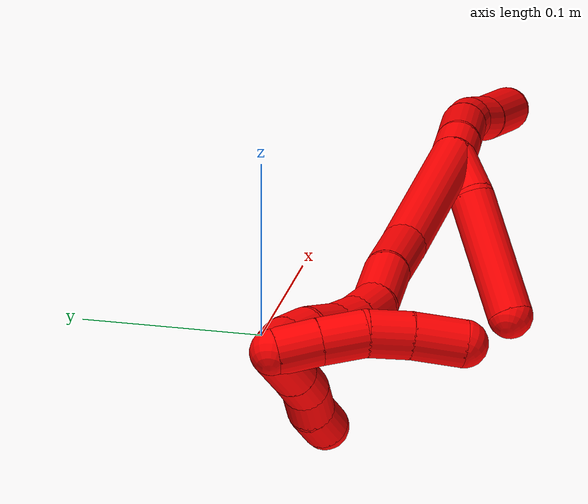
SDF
<sdf version="1.7">
 <world name="default">
  <model name="2">
   <static>0</static>
   <link name="2">
    <collision name="collision-cylinder-e_1_2_8">
     <pose>0.004263 0.001034 0.009183 -0.11218 0.432259 -0.024655</pose>
     <geometry><cylinder><radius>0.0125</radius><length>0.020354</length></cylinder></geometry>
     <surface>
      <friction><ode><mu>1.16</mu><mu2>1.16</mu2><slip1>0</slip1><slip2>0</slip2></ode></friction>
      <contact><ode><kp>1e+06</kp><kd>1</kd><max_vel>0</max_vel><min_depth>0.001</min_depth></ode></contact>
     </surface>
    </collision>
    <visual name="visual-cylinder-e_1_2_8">
     <pose>0.004263 0.001034 0.009183 -0.11218 0.432259 -0.024655</pose>
     <geometry><cylinder><radius>0.0125</radius><length>0.020354</length></cylinder></geometry>
     <material><ambient>1 0 0 1</ambient></material>
    </visual>
    <collision name="collision-cylinder-e_2_8_9">
     <pose>0.020799 0.006479 0.03587 -0.24682 0.597063 -0.076304</pose>
     <geometry><cylinder><radius>0.0125</radius><length>0.043655</length></cylinder></geometry>
     <surface>
      <friction><ode><mu>1.16</mu><mu2>1.16</mu2><slip1>0</slip1><slip2>0</slip2></ode></friction>
      <contact><ode><kp>1e+06</kp><kd>1</kd><max_vel>0</max_vel><min_depth>0.001</min_depth></ode></contact>
     </surface>
    </collision>
    <visual name="visual-cylinder-e_2_8_9">
     <pose>0.020799 0.006479 0.03587 -0.24682 0.597063 -0.076304</pose>
     <geometry><cylinder><radius>0.0125</radius><length>0.043655</length></cylinder></geometry>
     <material><ambient>1 0 0 1</ambient></material>
    </visual>
    <collision name="collision-cylinder-e_3_9_10">
     <pose>0.040222 0.012475 0.061663 -0.189056 0.702999 -0.069512</pose>
     <geometry><cylinder><radius>0.0125</radius><length>0.022123</length></cylinder></geometry>
     <surface>
      <friction><ode><mu>1.16</mu><mu2>1.16</mu2><slip1>0</slip1><slip2>0</slip2></ode></friction>
      <contact><ode><kp>1e+06</kp><kd>1</kd><max_vel>0</max_vel><min_depth>0.001</min_depth></ode></contact>
     </surface>
    </collision>
    <visual name="visual-cylinder-e_3_9_10">
     <pose>0.040222 0.012475 0.061663 -0.189056 0.702999 -0.069512</pose>
     <geometry><cylinder><radius>0.0125</radius><length>0.022123</length></cylinder></geometry>
     <material><ambient>1 0 0 1</ambient></material>
    </visual>
    <collision name="collision-cylinder-e_4_10_11">
     <pose>0.055381 0.01289 0.077123 0.1619 0.833898 0.071835</pose>
     <geometry><cylinder><radius>0.0125</radius><length>0.021626</length></cylinder></geometry>
     <surface>
      <friction><ode><mu>1.16</mu><mu2>1.16</mu2><slip1>0</slip1><slip2>0</slip2></ode></friction>
      <contact><ode><kp>1e+06</kp><kd>1</kd><max_vel>0</max_vel><min_depth>0.001</min_depth></ode></contact>
     </surface>
    </collision>
    <visual name="visual-cylinder-e_4_10_11">
     <pose>0.055381 0.01289 0.077123 0.1619 0.833898 0.071835</pose>
     <geometry><cylinder><radius>0.0125</radius><length>0.021626</length></cylinder></geometry>
     <material><ambient>1 0 0 1</ambient></material>
    </visual>
    <collision name="collision-cylinder-e_5_11_6">
     <pose>0.077537 0.011069 0.099962 0.041432 0.734071 0.015931</pose>
     <geometry><cylinder><radius>0.0125</radius><length>0.042242</length></cylinder></geometry>
     <surface>
      <friction><ode><mu>1.16</mu><mu2>1.16</mu2><slip1>0</slip1><slip2>0</slip2></ode></friction>
      <contact><ode><kp>1e+06</kp><kd>1</kd><max_vel>0</max_vel><min_depth>0.001</min_depth></ode></contact>
     </surface>
    </collision>
    <visual name="visual-cylinder-e_5_11_6">
     <pose>0.077537 0.011069 0.099962 0.041432 0.734071 0.015931</pose>
     <geometry><cylinder><radius>0.0125</radius><length>0.042242</length></cylinder></geometry>
     <material><ambient>1 0 0 1</ambient></material>
    </visual>
    <collision name="collision-cylinder-e_1_2_12">
     <pose>0.002988 -0.006355 -0.012648 2.676 0.208028 0.829497</pose>
     <geometry><cylinder><radius>0.0125</radius><length>0.028934</length></cylinder></geometry>
     <surface>
      <friction><ode><mu>1.16</mu><mu2>1.16</mu2><slip1>0</slip1><slip2>0</slip2></ode></friction>
      <contact><ode><kp>1e+06</kp><kd>1</kd><max_vel>0</max_vel><min_depth>0.001</min_depth></ode></contact>
     </surface>
    </collision>
    <visual name="visual-cylinder-e_1_2_12">
     <pose>0.002988 -0.006355 -0.012648 2.676 0.208028 0.829497</pose>
     <geometry><cylinder><radius>0.0125</radius><length>0.028934</length></cylinder></geometry>
     <material><ambient>1 0 0 1</ambient></material>
    </visual>
    <collision name="collision-cylinder-e_2_12_5">
     <pose>0.020989 -0.023566 -0.055617 2.79778 0.436231 1.8126</pose>
     <geometry><cylinder><radius>0.0125</radius><length>0.071066</length></cylinder></geometry>
     <surface>
      <friction><ode><mu>1.16</mu><mu2>1.16</mu2><slip1>0</slip1><slip2>0</slip2></ode></friction>
      <contact><ode><kp>1e+06</kp><kd>1</kd><max_vel>0</max_vel><min_depth>0.001</min_depth></ode></contact>
     </surface>
    </collision>
    <visual name="visual-cylinder-e_2_12_5">
     <pose>0.020989 -0.023566 -0.055617 2.79778 0.436231 1.8126</pose>
     <geometry><cylinder><radius>0.0125</radius><length>0.071066</length></cylinder></geometry>
     <material><ambient>1 0 0 1</ambient></material>
    </visual>
    <collision name="collision-cylinder-e_1_2_13">
     <pose>-0.021381 0.000858 -0.049456 -3.12424 -0.408 3.05775</pose>
     <geometry><cylinder><radius>0.0125</radius><length>0.107772</length></cylinder></geometry>
     <surface>
      <friction><ode><mu>1.16</mu><mu2>1.16</mu2><slip1>0</slip1><slip2>0</slip2></ode></friction>
      <contact><ode><kp>1e+06</kp><kd>1</kd><max_vel>0</max_vel><min_depth>0.001</min_depth></ode></contact>
     </surface>
    </collision>
    <visual name="visual-cylinder-e_1_2_13">
     <pose>-0.021381 0.000858 -0.049456 -3.12424 -0.408 3.05775</pose>
     <geometry><cylinder><radius>0.0125</radius><length>0.107772</length></cylinder></geometry>
     <material><ambient>1 0 0 1</ambient></material>
    </visual>
    <collision name="collision-cylinder-e_2_13_14">
     <pose>-0.054754 -6.8e-05 -0.118107 3.04887 -0.556462 -2.81956</pose>
     <geometry><cylinder><radius>0.0125</radius><length>0.045409</length></cylinder></geometry>
     <surface>
      <friction><ode><mu>1.16</mu><mu2>1.16</mu2><slip1>0</slip1><slip2>0</slip2></ode></friction>
      <contact><ode><kp>1e+06</kp><kd>1</kd><max_vel>0</max_vel><min_depth>0.001</min_depth></ode></contact>
     </surface>
    </collision>
    <visual name="visual-cylinder-e_2_13_14">
     <pose>-0.054754 -6.8e-05 -0.118107 3.04887 -0.556462 -2.81956</pose>
     <geometry><cylinder><radius>0.0125</radius><length>0.045409</length></cylinder></geometry>
     <material><ambient>1 0 0 1</ambient></material>
    </visual>
    <collision name="collision-cylinder-e_3_14_15">
     <pose>-0.073241 -0.002955 -0.153693 3.07448 -0.376527 -2.79279</pose>
     <geometry><cylinder><radius>0.0125</radius><length>0.035328</length></cylinder></geometry>
     <surface>
      <friction><ode><mu>1.16</mu><mu2>1.16</mu2><slip1>0</slip1><slip2>0</slip2></ode></friction>
      <contact><ode><kp>1e+06</kp><kd>1</kd><max_vel>0</max_vel><min_depth>0.001</min_depth></ode></contact>
     </surface>
    </collision>
    <visual name="visual-cylinder-e_3_14_15">
     <pose>-0.073241 -0.002955 -0.153693 3.07448 -0.376527 -2.79279</pose>
     <geometry><cylinder><radius>0.0125</radius><length>0.035328</length></cylinder></geometry>
     <material><ambient>1 0 0 1</ambient></material>
    </visual>
    <collision name="collision-cylinder-e_4_15_16">
     <pose>-0.085974 -0.001947 -0.179892 -2.92972 -0.556251 2.4286</pose>
     <geometry><cylinder><radius>0.0125</radius><length>0.02363</length></cylinder></geometry>
     <surface>
      <friction><ode><mu>1.16</mu><mu2>1.16</mu2><slip1>0</slip1><slip2>0</slip2></ode></friction>
      <contact><ode><kp>1e+06</kp><kd>1</kd><max_vel>0</max_vel><min_depth>0.001</min_depth></ode></contact>
     </surface>
    </collision>
    <visual name="visual-cylinder-e_4_15_16">
     <pose>-0.085974 -0.001947 -0.179892 -2.92972 -0.556251 2.4286</pose>
     <geometry><cylinder><radius>0.0125</radius><length>0.02363</length></cylinder></geometry>
     <material><ambient>1 0 0 1</ambient></material>
    </visual>
    <collision name="collision-cylinder-e_5_16_17">
     <pose>-0.09855 0.002783 -0.197367 -2.81232 -0.663872 2.24331</pose>
     <geometry><cylinder><radius>0.0125</radius><length>0.020571</length></cylinder></geometry>
     <surface>
      <friction><ode><mu>1.16</mu><mu2>1.16</mu2><slip1>0</slip1><slip2>0</slip2></ode></friction>
      <contact><ode><kp>1e+06</kp><kd>1</kd><max_vel>0</max_vel><min_depth>0.001</min_depth></ode></contact>
     </surface>
    </collision>
    <visual name="visual-cylinder-e_5_16_17">
     <pose>-0.09855 0.002783 -0.197367 -2.81232 -0.663872 2.24331</pose>
     <geometry><cylinder><radius>0.0125</radius><length>0.020571</length></cylinder></geometry>
     <material><ambient>1 0 0 1</ambient></material>
    </visual>
    <collision name="collision-cylinder-e_6_17_18">
     <pose>-0.114537 0.008545 -0.213652 -2.79194 -0.810638 2.36057</pose>
     <geometry><cylinder><radius>0.0125</radius><length>0.026631</length></cylinder></geometry>
     <surface>
      <friction><ode><mu>1.16</mu><mu2>1.16</mu2><slip1>0</slip1><slip2>0</slip2></ode></friction>
      <contact><ode><kp>1e+06</kp><kd>1</kd><max_vel>0</max_vel><min_depth>0.001</min_depth></ode></contact>
     </surface>
    </collision>
    <visual name="visual-cylinder-e_6_17_18">
     <pose>-0.114537 0.008545 -0.213652 -2.79194 -0.810638 2.36057</pose>
     <geometry><cylinder><radius>0.0125</radius><length>0.026631</length></cylinder></geometry>
     <material><ambient>1 0 0 1</ambient></material>
    </visual>
    <collision name="collision-cylinder-e_7_18_19">
     <pose>-0.129996 0.014765 -0.22993 -2.75956 -0.613271 2.04502</pose>
     <geometry><cylinder><radius>0.0125</radius><length>0.020184</length></cylinder></geometry>
     <surface>
      <friction><ode><mu>1.16</mu><mu2>1.16</mu2><slip1>0</slip1><slip2>0</slip2></ode></friction>
      <contact><ode><kp>1e+06</kp><kd>1</kd><max_vel>0</max_vel><min_depth>0.001</min_depth></ode></contact>
     </surface>
    </collision>
    <visual name="visual-cylinder-e_7_18_19">
     <pose>-0.129996 0.014765 -0.22993 -2.75956 -0.613271 2.04502</pose>
     <geometry><cylinder><radius>0.0125</radius><length>0.020184</length></cylinder></geometry>
     <material><ambient>1 0 0 1</ambient></material>
    </visual>
    <collision name="collision-cylinder-e_8_19_1">
     <pose>-0.141454 0.017617 -0.246123 3.11522 -0.584634 -3.05401</pose>
     <geometry><cylinder><radius>0.0125</radius><length>0.020475</length></cylinder></geometry>
     <surface>
      <friction><ode><mu>1.16</mu><mu2>1.16</mu2><slip1>0</slip1><slip2>0</slip2></ode></friction>
      <contact><ode><kp>1e+06</kp><kd>1</kd><max_vel>0</max_vel><min_depth>0.001</min_depth></ode></contact>
     </surface>
    </collision>
    <visual name="visual-cylinder-e_8_19_1">
     <pose>-0.141454 0.017617 -0.246123 3.11522 -0.584634 -3.05401</pose>
     <geometry><cylinder><radius>0.0125</radius><length>0.020475</length></cylinder></geometry>
     <material><ambient>1 0 0 1</ambient></material>
    </visual>
    <collision name="collision-cylinder-e_1_1_20">
     <pose>-0.143783 0.007135 -0.24948 1.1034 0.281389 0.173892</pose>
     <geometry><cylinder><radius>0.0125</radius><length>0.02392</length></cylinder></geometry>
     <surface>
      <friction><ode><mu>1.16</mu><mu2>1.16</mu2><slip1>0</slip1><slip2>0</slip2></ode></friction>
      <contact><ode><kp>1e+06</kp><kd>1</kd><max_vel>0</max_vel><min_depth>0.001</min_depth></ode></contact>
     </surface>
    </collision>
    <visual name="visual-cylinder-e_1_1_20">
     <pose>-0.143783 0.007135 -0.24948 1.1034 0.281389 0.173892</pose>
     <geometry><cylinder><radius>0.0125</radius><length>0.02392</length></cylinder></geometry>
     <material><ambient>1 0 0 1</ambient></material>
    </visual>
    <collision name="collision-cylinder-e_2_20_21">
     <pose>-0.137034 -0.014011 -0.239653 1.16718 0.281811 0.186778</pose>
     <geometry><cylinder><radius>0.0125</radius><length>0.024652</length></cylinder></geometry>
     <surface>
      <friction><ode><mu>1.16</mu><mu2>1.16</mu2><slip1>0</slip1><slip2>0</slip2></ode></friction>
      <contact><ode><kp>1e+06</kp><kd>1</kd><max_vel>0</max_vel><min_depth>0.001</min_depth></ode></contact>
     </surface>
    </collision>
    <visual name="visual-cylinder-e_2_20_21">
     <pose>-0.137034 -0.014011 -0.239653 1.16718 0.281811 0.186778</pose>
     <geometry><cylinder><radius>0.0125</radius><length>0.024652</length></cylinder></geometry>
     <material><ambient>1 0 0 1</ambient></material>
    </visual>
    <collision name="collision-cylinder-e_3_21_22">
     <pose>-0.128298 -0.034998 -0.232351 1.31396 0.470371 0.365503</pose>
     <geometry><cylinder><radius>0.0125</radius><length>0.023428</length></cylinder></geometry>
     <surface>
      <friction><ode><mu>1.16</mu><mu2>1.16</mu2><slip1>0</slip1><slip2>0</slip2></ode></friction>
      <contact><ode><kp>1e+06</kp><kd>1</kd><max_vel>0</max_vel><min_depth>0.001</min_depth></ode></contact>
     </surface>
    </collision>
    <visual name="visual-cylinder-e_3_21_22">
     <pose>-0.128298 -0.034998 -0.232351 1.31396 0.470371 0.365503</pose>
     <geometry><cylinder><radius>0.0125</radius><length>0.023428</length></cylinder></geometry>
     <material><ambient>1 0 0 1</ambient></material>
    </visual>
    <collision name="collision-cylinder-e_4_22_4">
     <pose>-0.116114 -0.057154 -0.22786 1.41946 0.513302 0.443485</pose>
     <geometry><cylinder><radius>0.0125</radius><length>0.028001</length></cylinder></geometry>
     <surface>
      <friction><ode><mu>1.16</mu><mu2>1.16</mu2><slip1>0</slip1><slip2>0</slip2></ode></friction>
      <contact><ode><kp>1e+06</kp><kd>1</kd><max_vel>0</max_vel><min_depth>0.001</min_depth></ode></contact>
     </surface>
    </collision>
    <visual name="visual-cylinder-e_4_22_4">
     <pose>-0.116114 -0.057154 -0.22786 1.41946 0.513302 0.443485</pose>
     <geometry><cylinder><radius>0.0125</radius><length>0.028001</length></cylinder></geometry>
     <material><ambient>1 0 0 1</ambient></material>
    </visual>
    <collision name="collision-cylinder-e_1_1_23">
     <pose>-0.130713 0.018147 -0.248414 -0.12044 1.20448 -0.082847</pose>
     <geometry><cylinder><radius>0.0125</radius><length>0.035112</length></cylinder></geometry>
     <surface>
      <friction><ode><mu>1.16</mu><mu2>1.16</mu2><slip1>0</slip1><slip2>0</slip2></ode></friction>
      <contact><ode><kp>1e+06</kp><kd>1</kd><max_vel>0</max_vel><min_depth>0.001</min_depth></ode></contact>
     </surface>
    </collision>
    <visual name="visual-cylinder-e_1_1_23">
     <pose>-0.130713 0.018147 -0.248414 -0.12044 1.20448 -0.082847</pose>
     <geometry><cylinder><radius>0.0125</radius><length>0.035112</length></cylinder></geometry>
     <material><ambient>1 0 0 1</ambient></material>
    </visual>
    <collision name="collision-cylinder-e_2_23_24">
     <pose>-0.103317 0.019679 -0.238137 -0.190072 1.21353 -0.132137</pose>
     <geometry><cylinder><radius>0.0125</radius><length>0.023493</length></cylinder></geometry>
     <surface>
      <friction><ode><mu>1.16</mu><mu2>1.16</mu2><slip1>0</slip1><slip2>0</slip2></ode></friction>
      <contact><ode><kp>1e+06</kp><kd>1</kd><max_vel>0</max_vel><min_depth>0.001</min_depth></ode></contact>
     </surface>
    </collision>
    <visual name="visual-cylinder-e_2_23_24">
     <pose>-0.103317 0.019679 -0.238137 -0.190072 1.21353 -0.132137</pose>
     <geometry><cylinder><radius>0.0125</radius><length>0.023493</length></cylinder></geometry>
     <material><ambient>1 0 0 1</ambient></material>
    </visual>
    <collision name="collision-cylinder-e_3_24_25">
     <pose>-0.081964 0.022129 -0.232893 -0.944787 1.37373 -0.793629</pose>
     <geometry><cylinder><radius>0.0125</radius><length>0.021103</length></cylinder></geometry>
     <surface>
      <friction><ode><mu>1.16</mu><mu2>1.16</mu2><slip1>0</slip1><slip2>0</slip2></ode></friction>
      <contact><ode><kp>1e+06</kp><kd>1</kd><max_vel>0</max_vel><min_depth>0.001</min_depth></ode></contact>
     </surface>
    </collision>
    <visual name="visual-cylinder-e_3_24_25">
     <pose>-0.081964 0.022129 -0.232893 -0.944787 1.37373 -0.793629</pose>
     <geometry><cylinder><radius>0.0125</radius><length>0.021103</length></cylinder></geometry>
     <material><ambient>1 0 0 1</ambient></material>
    </visual>
    <collision name="collision-cylinder-e_4_25_3">
     <pose>-0.061781 0.023227 -0.229264 0.233912 1.3232 0.182468</pose>
     <geometry><cylinder><radius>0.0125</radius><length>0.020291</length></cylinder></geometry>
     <surface>
      <friction><ode><mu>1.16</mu><mu2>1.16</mu2><slip1>0</slip1><slip2>0</slip2></ode></friction>
      <contact><ode><kp>1e+06</kp><kd>1</kd><max_vel>0</max_vel><min_depth>0.001</min_depth></ode></contact>
     </surface>
    </collision>
    <visual name="visual-cylinder-e_4_25_3">
     <pose>-0.061781 0.023227 -0.229264 0.233912 1.3232 0.182468</pose>
     <geometry><cylinder><radius>0.0125</radius><length>0.020291</length></cylinder></geometry>
     <material><ambient>1 0 0 1</ambient></material>
    </visual>
    <collision name="collision-sphere-3">
     <pose>-0.051945 0.022651 -0.226845 0 -0 0</pose>
     <geometry><sphere><radius>0.0125</radius></sphere></geometry>
     <surface>
      <friction><ode><mu>1.16</mu><mu2>1.16</mu2><slip1>0</slip1><slip2>0</slip2></ode></friction>
      <contact><ode><kp>1e+06</kp><kd>1</kd><max_vel>0</max_vel><min_depth>0.001</min_depth></ode></contact>
     </surface>
    </collision>
    <visual name="visual-sphere-3">
     <pose>-0.051945 0.022651 -0.226845 0 -0 0</pose>
     <geometry><sphere><radius>0.0125</radius></sphere></geometry>
     <material><ambient>1 0 0 1</ambient></material>
    </visual>
    <collision name="collision-sphere-25">
     <pose>-0.071617 0.023804 -0.231682 0 -0 0</pose>
     <geometry><sphere><radius>0.0125</radius></sphere></geometry>
     <surface>
      <friction><ode><mu>1.16</mu><mu2>1.16</mu2><slip1>0</slip1><slip2>0</slip2></ode></friction>
      <contact><ode><kp>1e+06</kp><kd>1</kd><max_vel>0</max_vel><min_depth>0.001</min_depth></ode></contact>
     </surface>
    </collision>
    <visual name="visual-sphere-25">
     <pose>-0.071617 0.023804 -0.231682 0 -0 0</pose>
     <geometry><sphere><radius>0.0125</radius></sphere></geometry>
     <material><ambient>1 0 0 1</ambient></material>
    </visual>
    <collision name="collision-sphere-24">
     <pose>-0.092312 0.020455 -0.234103 0 -0 0</pose>
     <geometry><sphere><radius>0.0125</radius></sphere></geometry>
     <surface>
      <friction><ode><mu>1.16</mu><mu2>1.16</mu2><slip1>0</slip1><slip2>0</slip2></ode></friction>
      <contact><ode><kp>1e+06</kp><kd>1</kd><max_vel>0</max_vel><min_depth>0.001</min_depth></ode></contact>
     </surface>
    </collision>
    <visual name="visual-sphere-24">
     <pose>-0.092312 0.020455 -0.234103 0 -0 0</pose>
     <geometry><sphere><radius>0.0125</radius></sphere></geometry>
     <material><ambient>1 0 0 1</ambient></material>
    </visual>
    <collision name="collision-sphere-23">
     <pose>-0.114322 0.018903 -0.242171 0 -0 0</pose>
     <geometry><sphere><radius>0.0125</radius></sphere></geometry>
     <surface>
      <friction><ode><mu>1.16</mu><mu2>1.16</mu2><slip1>0</slip1><slip2>0</slip2></ode></friction>
      <contact><ode><kp>1e+06</kp><kd>1</kd><max_vel>0</max_vel><min_depth>0.001</min_depth></ode></contact>
     </surface>
    </collision>
    <visual name="visual-sphere-23">
     <pose>-0.114322 0.018903 -0.242171 0 -0 0</pose>
     <geometry><sphere><radius>0.0125</radius></sphere></geometry>
     <material><ambient>1 0 0 1</ambient></material>
    </visual>
    <collision name="collision-sphere-4">
     <pose>-0.109239 -0.069211 -0.226021 0 -0 0</pose>
     <geometry><sphere><radius>0.0125</radius></sphere></geometry>
     <surface>
      <friction><ode><mu>1.16</mu><mu2>1.16</mu2><slip1>0</slip1><slip2>0</slip2></ode></friction>
      <contact><ode><kp>1e+06</kp><kd>1</kd><max_vel>0</max_vel><min_depth>0.001</min_depth></ode></contact>
     </surface>
    </collision>
    <visual name="visual-sphere-4">
     <pose>-0.109239 -0.069211 -0.226021 0 -0 0</pose>
     <geometry><sphere><radius>0.0125</radius></sphere></geometry>
     <material><ambient>1 0 0 1</ambient></material>
    </visual>
    <collision name="collision-sphere-22">
     <pose>-0.122989 -0.045097 -0.229698 0 -0 0</pose>
     <geometry><sphere><radius>0.0125</radius></sphere></geometry>
     <surface>
      <friction><ode><mu>1.16</mu><mu2>1.16</mu2><slip1>0</slip1><slip2>0</slip2></ode></friction>
      <contact><ode><kp>1e+06</kp><kd>1</kd><max_vel>0</max_vel><min_depth>0.001</min_depth></ode></contact>
     </surface>
    </collision>
    <visual name="visual-sphere-22">
     <pose>-0.122989 -0.045097 -0.229698 0 -0 0</pose>
     <geometry><sphere><radius>0.0125</radius></sphere></geometry>
     <material><ambient>1 0 0 1</ambient></material>
    </visual>
    <collision name="collision-sphere-21">
     <pose>-0.133607 -0.024899 -0.235003 0 -0 0</pose>
     <geometry><sphere><radius>0.0125</radius></sphere></geometry>
     <surface>
      <friction><ode><mu>1.16</mu><mu2>1.16</mu2><slip1>0</slip1><slip2>0</slip2></ode></friction>
      <contact><ode><kp>1e+06</kp><kd>1</kd><max_vel>0</max_vel><min_depth>0.001</min_depth></ode></contact>
     </surface>
    </collision>
    <visual name="visual-sphere-21">
     <pose>-0.133607 -0.024899 -0.235003 0 -0 0</pose>
     <geometry><sphere><radius>0.0125</radius></sphere></geometry>
     <material><ambient>1 0 0 1</ambient></material>
    </visual>
    <collision name="collision-sphere-20">
     <pose>-0.140462 -0.003123 -0.244303 0 -0 0</pose>
     <geometry><sphere><radius>0.0125</radius></sphere></geometry>
     <surface>
      <friction><ode><mu>1.16</mu><mu2>1.16</mu2><slip1>0</slip1><slip2>0</slip2></ode></friction>
      <contact><ode><kp>1e+06</kp><kd>1</kd><max_vel>0</max_vel><min_depth>0.001</min_depth></ode></contact>
     </surface>
    </collision>
    <visual name="visual-sphere-20">
     <pose>-0.140462 -0.003123 -0.244303 0 -0 0</pose>
     <geometry><sphere><radius>0.0125</radius></sphere></geometry>
     <material><ambient>1 0 0 1</ambient></material>
    </visual>
    <collision name="collision-sphere-6">
     <pose>0.091686 0.01042 0.115629 0 -0 0</pose>
     <geometry><sphere><radius>0.0125</radius></sphere></geometry>
     <surface>
      <friction><ode><mu>1.16</mu><mu2>1.16</mu2><slip1>0</slip1><slip2>0</slip2></ode></friction>
      <contact><ode><kp>1e+06</kp><kd>1</kd><max_vel>0</max_vel><min_depth>0.001</min_depth></ode></contact>
     </surface>
    </collision>
    <visual name="visual-sphere-6">
     <pose>0.091686 0.01042 0.115629 0 -0 0</pose>
     <geometry><sphere><radius>0.0125</radius></sphere></geometry>
     <material><ambient>1 0 0 1</ambient></material>
    </visual>
    <collision name="collision-sphere-11">
     <pose>0.063389 0.011719 0.084294 0 -0 0</pose>
     <geometry><sphere><radius>0.0125</radius></sphere></geometry>
     <surface>
      <friction><ode><mu>1.16</mu><mu2>1.16</mu2><slip1>0</slip1><slip2>0</slip2></ode></friction>
      <contact><ode><kp>1e+06</kp><kd>1</kd><max_vel>0</max_vel><min_depth>0.001</min_depth></ode></contact>
     </surface>
    </collision>
    <visual name="visual-sphere-11">
     <pose>0.063389 0.011719 0.084294 0 -0 0</pose>
     <geometry><sphere><radius>0.0125</radius></sphere></geometry>
     <material><ambient>1 0 0 1</ambient></material>
    </visual>
    <collision name="collision-sphere-10">
     <pose>0.047373 0.014061 0.069951 0 -0 0</pose>
     <geometry><sphere><radius>0.0125</radius></sphere></geometry>
     <surface>
      <friction><ode><mu>1.16</mu><mu2>1.16</mu2><slip1>0</slip1><slip2>0</slip2></ode></friction>
      <contact><ode><kp>1e+06</kp><kd>1</kd><max_vel>0</max_vel><min_depth>0.001</min_depth></ode></contact>
     </surface>
    </collision>
    <visual name="visual-sphere-10">
     <pose>0.047373 0.014061 0.069951 0 -0 0</pose>
     <geometry><sphere><radius>0.0125</radius></sphere></geometry>
     <material><ambient>1 0 0 1</ambient></material>
    </visual>
    <collision name="collision-sphere-9">
     <pose>0.03307 0.010889 0.053374 0 -0 0</pose>
     <geometry><sphere><radius>0.0125</radius></sphere></geometry>
     <surface>
      <friction><ode><mu>1.16</mu><mu2>1.16</mu2><slip1>0</slip1><slip2>0</slip2></ode></friction>
      <contact><ode><kp>1e+06</kp><kd>1</kd><max_vel>0</max_vel><min_depth>0.001</min_depth></ode></contact>
     </surface>
    </collision>
    <visual name="visual-sphere-9">
     <pose>0.03307 0.010889 0.053374 0 -0 0</pose>
     <geometry><sphere><radius>0.0125</radius></sphere></geometry>
     <material><ambient>1 0 0 1</ambient></material>
    </visual>
    <collision name="collision-sphere-2">
     <geometry><sphere><radius>0.0125</radius></sphere></geometry>
     <surface>
      <friction><ode><mu>1.16</mu><mu2>1.16</mu2><slip1>0</slip1><slip2>0</slip2></ode></friction>
      <contact><ode><kp>1e+06</kp><kd>1</kd><max_vel>0</max_vel><min_depth>0.001</min_depth></ode></contact>
     </surface>
    </collision>
    <visual name="visual-sphere-2">
     <geometry><sphere><radius>0.0125</radius></sphere></geometry>
     <material><ambient>1 0 0 1</ambient></material>
    </visual>
    <collision name="collision-sphere-19">
     <pose>-0.135804 0.017842 -0.237588 0 -0 0</pose>
     <geometry><sphere><radius>0.0125</radius></sphere></geometry>
     <surface>
      <friction><ode><mu>1.16</mu><mu2>1.16</mu2><slip1>0</slip1><slip2>0</slip2></ode></friction>
      <contact><ode><kp>1e+06</kp><kd>1</kd><max_vel>0</max_vel><min_depth>0.001</min_depth></ode></contact>
     </surface>
    </collision>
    <visual name="visual-sphere-19">
     <pose>-0.135804 0.017842 -0.237588 0 -0 0</pose>
     <geometry><sphere><radius>0.0125</radius></sphere></geometry>
     <material><ambient>1 0 0 1</ambient></material>
    </visual>
    <collision name="collision-sphere-8">
     <pose>0.008527 0.002069 0.018366 0 -0 0</pose>
     <geometry><sphere><radius>0.0125</radius></sphere></geometry>
     <surface>
      <friction><ode><mu>1.16</mu><mu2>1.16</mu2><slip1>0</slip1><slip2>0</slip2></ode></friction>
      <contact><ode><kp>1e+06</kp><kd>1</kd><max_vel>0</max_vel><min_depth>0.001</min_depth></ode></contact>
     </surface>
    </collision>
    <visual name="visual-sphere-8">
     <pose>0.008527 0.002069 0.018366 0 -0 0</pose>
     <geometry><sphere><radius>0.0125</radius></sphere></geometry>
     <material><ambient>1 0 0 1</ambient></material>
    </visual>
    <collision name="collision-sphere-12">
     <pose>0.005976 -0.01271 -0.025297 0 -0 0</pose>
     <geometry><sphere><radius>0.0125</radius></sphere></geometry>
     <surface>
      <friction><ode><mu>1.16</mu><mu2>1.16</mu2><slip1>0</slip1><slip2>0</slip2></ode></friction>
      <contact><ode><kp>1e+06</kp><kd>1</kd><max_vel>0</max_vel><min_depth>0.001</min_depth></ode></contact>
     </surface>
    </collision>
    <visual name="visual-sphere-12">
     <pose>0.005976 -0.01271 -0.025297 0 -0 0</pose>
     <geometry><sphere><radius>0.0125</radius></sphere></geometry>
     <material><ambient>1 0 0 1</ambient></material>
    </visual>
    <collision name="collision-sphere-5">
     <pose>0.036003 -0.034421 -0.085938 0 -0 0</pose>
     <geometry><sphere><radius>0.0125</radius></sphere></geometry>
     <surface>
      <friction><ode><mu>1.16</mu><mu2>1.16</mu2><slip1>0</slip1><slip2>0</slip2></ode></friction>
      <contact><ode><kp>1e+06</kp><kd>1</kd><max_vel>0</max_vel><min_depth>0.001</min_depth></ode></contact>
     </surface>
    </collision>
    <visual name="visual-sphere-5">
     <pose>0.036003 -0.034421 -0.085938 0 -0 0</pose>
     <geometry><sphere><radius>0.0125</radius></sphere></geometry>
     <material><ambient>1 0 0 1</ambient></material>
    </visual>
    <collision name="collision-sphere-13">
     <pose>-0.042761 0.001717 -0.098911 0 -0 0</pose>
     <geometry><sphere><radius>0.0125</radius></sphere></geometry>
     <surface>
      <friction><ode><mu>1.16</mu><mu2>1.16</mu2><slip1>0</slip1><slip2>0</slip2></ode></friction>
      <contact><ode><kp>1e+06</kp><kd>1</kd><max_vel>0</max_vel><min_depth>0.001</min_depth></ode></contact>
     </surface>
    </collision>
    <visual name="visual-sphere-13">
     <pose>-0.042761 0.001717 -0.098911 0 -0 0</pose>
     <geometry><sphere><radius>0.0125</radius></sphere></geometry>
     <material><ambient>1 0 0 1</ambient></material>
    </visual>
    <collision name="collision-sphere-14">
     <pose>-0.066746 -0.001853 -0.137304 0 -0 0</pose>
     <geometry><sphere><radius>0.0125</radius></sphere></geometry>
     <surface>
      <friction><ode><mu>1.16</mu><mu2>1.16</mu2><slip1>0</slip1><slip2>0</slip2></ode></friction>
      <contact><ode><kp>1e+06</kp><kd>1</kd><max_vel>0</max_vel><min_depth>0.001</min_depth></ode></contact>
     </surface>
    </collision>
    <visual name="visual-sphere-14">
     <pose>-0.066746 -0.001853 -0.137304 0 -0 0</pose>
     <geometry><sphere><radius>0.0125</radius></sphere></geometry>
     <material><ambient>1 0 0 1</ambient></material>
    </visual>
    <collision name="collision-sphere-15">
     <pose>-0.079736 -0.004056 -0.170083 0 -0 0</pose>
     <geometry><sphere><radius>0.0125</radius></sphere></geometry>
     <surface>
      <friction><ode><mu>1.16</mu><mu2>1.16</mu2><slip1>0</slip1><slip2>0</slip2></ode></friction>
      <contact><ode><kp>1e+06</kp><kd>1</kd><max_vel>0</max_vel><min_depth>0.001</min_depth></ode></contact>
     </surface>
    </collision>
    <visual name="visual-sphere-15">
     <pose>-0.079736 -0.004056 -0.170083 0 -0 0</pose>
     <geometry><sphere><radius>0.0125</radius></sphere></geometry>
     <material><ambient>1 0 0 1</ambient></material>
    </visual>
    <collision name="collision-sphere-16">
     <pose>-0.092212 0.000163 -0.189701 0 -0 0</pose>
     <geometry><sphere><radius>0.0125</radius></sphere></geometry>
     <surface>
      <friction><ode><mu>1.16</mu><mu2>1.16</mu2><slip1>0</slip1><slip2>0</slip2></ode></friction>
      <contact><ode><kp>1e+06</kp><kd>1</kd><max_vel>0</max_vel><min_depth>0.001</min_depth></ode></contact>
     </surface>
    </collision>
    <visual name="visual-sphere-16">
     <pose>-0.092212 0.000163 -0.189701 0 -0 0</pose>
     <geometry><sphere><radius>0.0125</radius></sphere></geometry>
     <material><ambient>1 0 0 1</ambient></material>
    </visual>
    <collision name="collision-sphere-17">
     <pose>-0.104887 0.005402 -0.205033 0 -0 0</pose>
     <geometry><sphere><radius>0.0125</radius></sphere></geometry>
     <surface>
      <friction><ode><mu>1.16</mu><mu2>1.16</mu2><slip1>0</slip1><slip2>0</slip2></ode></friction>
      <contact><ode><kp>1e+06</kp><kd>1</kd><max_vel>0</max_vel><min_depth>0.001</min_depth></ode></contact>
     </surface>
    </collision>
    <visual name="visual-sphere-17">
     <pose>-0.104887 0.005402 -0.205033 0 -0 0</pose>
     <geometry><sphere><radius>0.0125</radius></sphere></geometry>
     <material><ambient>1 0 0 1</ambient></material>
    </visual>
    <collision name="collision-sphere-18">
     <pose>-0.124187 0.011688 -0.222272 0 -0 0</pose>
     <geometry><sphere><radius>0.0125</radius></sphere></geometry>
     <surface>
      <friction><ode><mu>1.16</mu><mu2>1.16</mu2><slip1>0</slip1><slip2>0</slip2></ode></friction>
      <contact><ode><kp>1e+06</kp><kd>1</kd><max_vel>0</max_vel><min_depth>0.001</min_depth></ode></contact>
     </surface>
    </collision>
    <visual name="visual-sphere-18">
     <pose>-0.124187 0.011688 -0.222272 0 -0 0</pose>
     <geometry><sphere><radius>0.0125</radius></sphere></geometry>
     <material><ambient>1 0 0 1</ambient></material>
    </visual>
    <collision name="collision-sphere-1">
     <pose>-0.147104 0.017392 -0.254657 0 -0 0</pose>
     <geometry><sphere><radius>0.0125</radius></sphere></geometry>
     <surface>
      <friction><ode><mu>1.16</mu><mu2>1.16</mu2><slip1>0</slip1><slip2>0</slip2></ode></friction>
      <contact><ode><kp>1e+06</kp><kd>1</kd><max_vel>0</max_vel><min_depth>0.001</min_depth></ode></contact>
     </surface>
    </collision>
    <visual name="visual-sphere-1">
     <pose>-0.147104 0.017392 -0.254657 0 -0 0</pose>
     <geometry><sphere><radius>0.0125</radius></sphere></geometry>
     <material><ambient>1 0 0 1</ambient></material>
    </visual>
    <inertial>
     <pose>-0.046861 -0.000276 -0.110264 0 -0 0</pose>
     <mass>0.75</mass>
     <inertia>
      <ixx>-4.4e-05</ixx>
      <ixy>0</ixy>
      <ixz>0</ixz>
      <iyy>0.000209</iyy>
      <iyz>0</iyz>
      <izz>1.6e-05</izz>
     </inertia>
    </inertial>
   </link>
   <pose>0.089601 -0.08671 0.076919 -0.38279 1.04263 -0.381371</pose>
  </model>
 </world>
</sdf>
